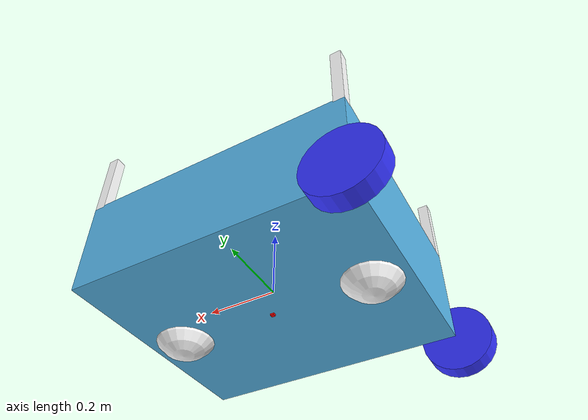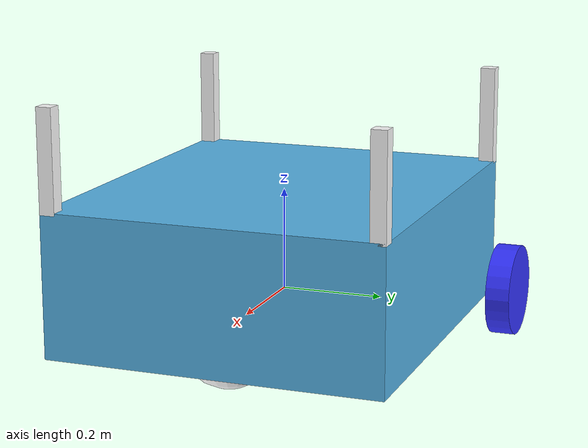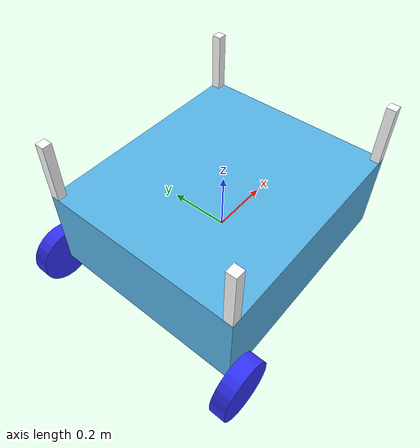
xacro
<?xml version ="1.0"?>
<robot xmlns:xacro="http://ros.org/wiki/xacro" name="urdf_test">

    <!-- MACROS -->
    <xacro:include filename="macros.xacro"/>

    <xacro:property name="chassis_length" value="0.76"/>
    <xacro:property name="chassis_width" value="0.66"/>
    <xacro:property name="chassis_height" value="0.28"/>
    <xacro:property name="chassis_mass" value="7.2"/>
    <xacro:property name="wheel_radius" value="0.095"/>
    <xacro:property name="wheel_thickness" value="0.05"/>
    <xacro:property name="wheel_mass" value="1.3"/>
    <xacro:property name="wheel_offset_x" value="0.38"/>
    <xacro:property name="wheel_offset_y" value="0.3625"/>
    <xacro:property name="wheel_offset_z" value="0.07"/>
    <xacro:property name="caster_wheel_radius" value="0.095"/>
    <xacro:property name="caster_wheel_mass" value="0.4"/>
    <xacro:property name="caster_wheel_offset_x" value="0.33"/>
    <xacro:property name="caster_wheel_offset_z" value="0.05"/>

    <material name="white">
        <color rgba="1 1 1 1" />
    </material>

    <material name="orange">
        <color rgba="1 0.3 0.1 1"/>
    </material>

    <material name="blue">
        <color rgba="0.2 0.2 1 1"/>
    </material>

    <material name="black">
        <color rgba="0 0 0 1"/>
    </material>

    <material name="red">
        <color rgba="1 0 0 1"/>
    </material>

    <!-- BASE_FOOTPRINT LINK -->

    <link name="base_footprint"/>

    <!-- Base LINK -->

    <joint name="base_joint" type="fixed">
        <parent link="base_footprint"/>
        <child link="base_link" />
        <origin xyz="${-wheel_offset_x} 0 ${-wheel_offset_z}"/>
    </joint>

    <link name="base_link">
        <visual>
            <origin xyz="${chassis_length/2} 0 ${chassis_height/2}"/>
            <geometry>
                <box size="${chassis_length} ${chassis_width} ${chassis_height}"/>
            </geometry>
        </visual>
        <collision>
            <origin xyz="${chassis_length/2} 0 ${chassis_height/2}"/>
            <geometry>
                <box size="${chassis_length} ${chassis_width} ${chassis_height}"/>
            </geometry>
        </collision>
        <xacro:inertial_box mass="0.5" x="${chassis_length}" y="${chassis_width}" z="${chassis_height}">
            <origin xyz="${chassis_length/2} 0 ${chassis_height/2}" rpy="0 0 0"/>
        </xacro:inertial_box>
    </link>

    <!-- LEFT WHEEL LINK -->

    <joint name="wheel_left_joint" type="continuous">
        <parent link="base_link"/>
        <child link="wheel_left_link"/>
        <origin xyz="0 ${wheel_offset_y} 0" rpy="-${pi/2} 0 0" />
        <axis xyz="0 0 1"/>
    </joint>

    <link name="wheel_left_link">
        <visual>
            <geometry>
                <cylinder radius="${wheel_radius}" length="${wheel_thickness}"/>
            </geometry>
            <material name="blue"/>
        </visual>
        <collision>
            <geometry>
                <cylinder radius="${wheel_radius}" length="${wheel_thickness}"/>
            </geometry>
        </collision>
        <xacro:inertial_cylinder mass="${wheel_mass}" length="${wheel_thickness}" radius="${wheel_radius}">
            <origin xyz="0 0 0" rpy="0 0 0"/>
        </xacro:inertial_cylinder>
    </link>

    <gazebo reference="wheel_left_link">
        <material>Gazebo/Blue</material>
    </gazebo>

    <!-- RIGHT WHEEL LINK -->

    <joint name="wheel_right_joint" type="continuous">
        <parent link="base_link"/>
        <child link="wheel_right_link"/>
        <origin xyz="0 ${-wheel_offset_y} 0" rpy="${pi/2} 0 0" />
        <axis xyz="0 0 -1"/>
    </joint>

    <link name="wheel_right_link">
        <visual>
            <geometry>
                <cylinder radius="${wheel_radius}" length="${wheel_thickness}"/>
            </geometry>
            <material name="blue"/>
        </visual>
        <collision>
            <geometry>
                <cylinder radius="${wheel_radius}" length="${wheel_thickness}"/>
            </geometry>
        </collision>
        <xacro:inertial_cylinder mass="${wheel_mass}" length="${wheel_thickness}" radius="${wheel_radius}">
            <origin xyz="0 0 0" rpy="0 0 0"/>
        </xacro:inertial_cylinder>
    </link>

    <gazebo reference="wheel_right_link">
        <material>Gazebo/Blue</material>
    </gazebo>

    <!-- CASTER WHEEL LINK -->

    <joint name="caster_wheel_joint" type="fixed">
        <parent link="base_link"/>
        <child link="caster_wheel"/>
        <origin xyz="${caster_wheel_offset_x*2} 0 ${caster_wheel_offset_z}"/>
    </joint>

    <link name="caster_wheel">
        <visual>
            <geometry>
                <sphere radius="${caster_wheel_radius}"/>
            </geometry>
            <material name="white"/>
        </visual>
        <collision>
            <geometry>
                <sphere radius="${caster_wheel_radius}"/>
            </geometry>
        </collision>
        <xacro:inertial_sphere mass="${caster_wheel_mass}" radius="${caster_wheel_radius}">
            <origin xyz="0 0 0" rpy="0 0 0"/>
        </xacro:inertial_sphere>
    </link>

    <gazebo reference="caster_wheel">
        <material>Gazebo/White</material>
        <mu1 value="0.001"/>
        <mu2 value="0.001"/>
    </gazebo>

    <!-- CASTER WHEEL LINK -->

    <joint name="caster_wheel1_joint" type="fixed">
        <parent link="base_link"/>
        <child link="caster_wheel1"/>
        <origin xyz="0.1 0 ${caster_wheel_offset_z}"/>
    </joint>

    <link name="caster_wheel1">
        <visual>
            <geometry>
                <sphere radius="${caster_wheel_radius}"/>
            </geometry>
            <material name="white"/>
        </visual>
        <collision>
            <geometry>
                <sphere radius="${caster_wheel_radius}"/>
            </geometry>
        </collision>
        <xacro:inertial_sphere mass="${caster_wheel_mass}" radius="${caster_wheel_radius}">
            <origin xyz="0 0 0" rpy="0 0 0"/>
        </xacro:inertial_sphere>
    </link>

    <gazebo reference="caster_wheel1">
        <material>Gazebo/White</material>
        <mu1 value="0.001"/>
        <mu2 value="0.001"/>
    </gazebo>

    <!--column1-->

    <joint name="column1_joint" type="fixed">
        <parent link="base_link"/>
        <child link="column1"/>
        <origin xyz="${wheel_offset_x+0.365} 0.315 0.375"/>
    </joint>

    <link name="column1">
        <visual>
            <geometry>
                <box size="0.03 0.03 0.2"/>
            </geometry>
            <material name="white"/>
        </visual>
        <collision>
            <geometry>
                <box size="0.03 0.03 0.2"/>
            </geometry>
        </collision>
        <xacro:inertial_box mass="0.8" x="0.03" y="0.03" z="0.2">
            <origin xyz="0 0 0" rpy="0 0 0"/>
        </xacro:inertial_box>
    </link>

    <gazebo reference="column1">
        <material>Gazebo/White</material>
    </gazebo>

    <!--column2-->
    <joint name="column2_joint" type="fixed">
        <parent link="base_link"/>
        <child link="column2"/>
        <origin xyz="${wheel_offset_x-0.365} 0.315 0.375"/>
    </joint>

    <link name="column2">
        <visual>
            <geometry>
                <box size="0.03 0.03 0.2"/>
            </geometry>
            <material name="white"/>
        </visual>
        <collision>
            <geometry>
                <box size="0.03 0.03 0.2"/>
            </geometry>
        </collision>
        <xacro:inertial_box mass="0.8" x="0.03" y="0.03" z="0.2">
            <origin xyz="0 0 0" rpy="0 0 0"/>
        </xacro:inertial_box>
    </link>

    <gazebo reference="column2">
        <material>Gazebo/White</material>
    </gazebo>

    <!--column3-->

    <joint name="column3_joint" type="fixed">
        <parent link="base_link"/>
        <child link="column3"/>
        <origin xyz="${wheel_offset_x+0.365} -0.315 0.375"/>
    </joint>

    <link name="column3">
        <visual>
            <geometry>
                <box size="0.03 0.03 0.2"/>
            </geometry>
            <material name="white"/>
        </visual>
        <collision>
            <geometry>
                <box size="0.03 0.03 0.2"/>
            </geometry>
        </collision>
        <xacro:inertial_box mass="0.8" x="0.03" y="0.03" z="0.2">
            <origin xyz="0 0 0" rpy="0 0 0"/>
        </xacro:inertial_box>
    </link>

    <gazebo reference="column3">
        <material>Gazebo/White</material>
    </gazebo>

    <!--column4-->

    <joint name="column4_joint" type="fixed">
        <parent link="base_link"/>
        <child link="column4"/>
        <origin xyz="${wheel_offset_x-0.365} -0.315 0.375"/>
    </joint>

    <link name="column4">
        <visual>
            <geometry>
                <box size="0.03 0.03 0.2"/>
            </geometry>
            <material name="white"/>
        </visual>
        <collision>
            <geometry>
                <box size="0.03 0.03 0.2"/>
            </geometry>
        </collision>
        <xacro:inertial_box mass="0.8" x="0.03" y="0.03" z="0.2">
            <origin xyz="0 0 0" rpy="0 0 0"/>
        </xacro:inertial_box>
    </link>

    <gazebo reference="column4">
        <material>Gazebo/White</material>
    </gazebo>

    <joint name="imu_joint" type="fixed">
        <parent link="base_footprint"/>
        <child link="imu_link"/>
        <origin xyz="${-wheel_offset_x} 0 ${-wheel_offset_z}"/>
        <axis xyz="0 1 0"/>
    </joint>

    <link name="imu_link">
        <collision>
            <origin xyz="${chassis_length/2} 0 0" rpy="0 0 0"/>
            <geometry>
	            <box size="0.01 0.01 0.01"/>
            </geometry>
        </collision>

        <visual>
            <origin xyz="${chassis_length/2} 0 0" rpy="0 0 0"/>
            <geometry>
	            <box size="0.01 0.01 0.01"/>
            </geometry>
            <material name="red"/>
        </visual>

        <inertial>
            <origin xyz="0 0 0" rpy="0 0 0"/>
            <mass value="0.1"/>
            <inertia
	        ixx="0.00016667" ixy="0.0" ixz="0.0"
	        iyy="0.00016667" iyz="0.0"
	        izz="0.00016667"/>
        </inertial>
    </link>

</robot>
